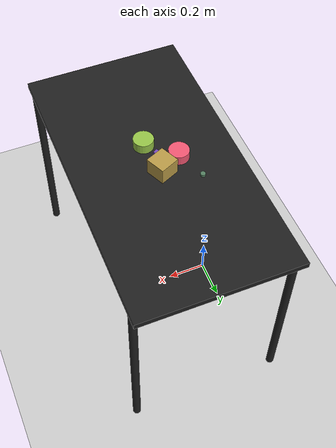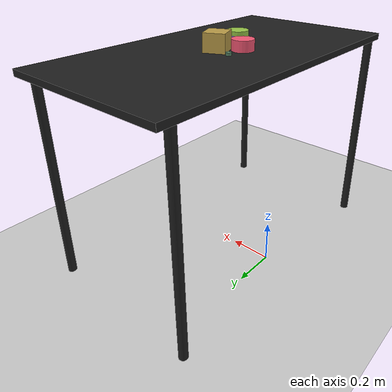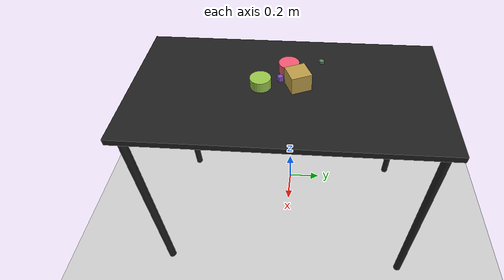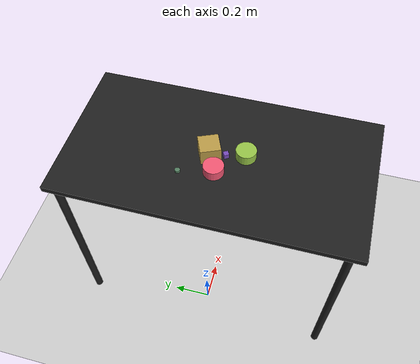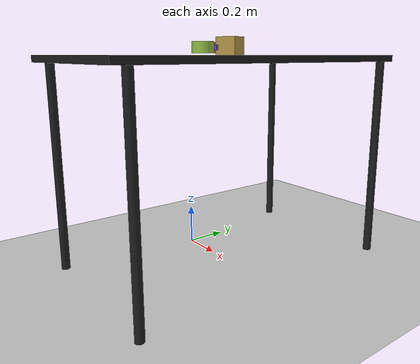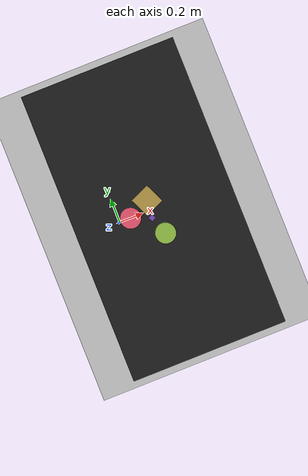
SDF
<?xml version="1.0" ?>
<sdf version="1.6">
  <world name="arm_world">
    <plugin filename="gz-sim-physics-system" name="gz::sim::systems::Physics">
      <engine>
        <filename>libgz-physics-bullet-featherstone-plugin.so</filename>
      </engine>
    </plugin>
    <plugin filename="gz-sim-user-commands-system" name="gz::sim::systems::UserCommands"/>
    <plugin filename="gz-sim-scene-broadcaster-system" name="gz::sim::systems::SceneBroadcaster"/>
    <plugin filename="gz-sim-sensors-system" name="gz::sim::systems::Sensors">
      <render_engine>ogre2</render_engine>
    </plugin>
    <gravity>0.0 0.0 -9.8</gravity>
    <scene>
      <shadows>false</shadows>
    </scene>
    <gui>
      <camera name="user_camera">
        <pose>0.75 -0.75 1.4 0 0.29 2.21</pose>
      </camera>
    </gui>
    <include>
      <uri>https://fuel.gazebosim.org/1.0/OpenRobotics/models/Sun</uri>
    </include>
    <model name="table">
      <static>true</static>
      <include>
        <uri>model://table</uri>
      </include>
      <pose>0.29 0 0 0 0 1.5708</pose>
    </model>
    <model name="ground_plane">
      <static>true</static>
      <link name="link">
        <collision name="collision">
          <geometry>
            <plane>
              <normal>0 0 1</normal>
            </plane>
          </geometry>
          <surface>
            <friction>
              <ode>
                <mu>1.0</mu>
                <mu2>1.0</mu2>
              </ode>
            </friction>
          </surface>
        </collision>
        <visual name="visual">
          <geometry>
            <plane>
              <normal>0 0 1</normal>
              <size>100 100</size>
            </plane>
          </geometry>
          <material>
            <ambient>0.8 0.8 0.8 1</ambient>
            <diffuse>0.8 0.8 0.8 1</diffuse>
            <specular>0.8 0.8 0.8 1</specular>
          </material>
        </visual>
      </link>
    </model>
    <model name="cylinder_l_0">
      <pose>0.175 0.0 1.05 0 0 2.44</pose>
      <link name="cylinder_l_0_link">
        <collision name="cylinder_l_0_collision">
          <geometry>
            <cylinder>
              <radius>0.05</radius>
              <length>0.05</length>
            </cylinder>
          </geometry>
        </collision>
        <visual name="cylinder_l_0_visual">
          <geometry>
            <cylinder>
              <radius>0.05</radius>
              <length>0.05</length>
            </cylinder>
          </geometry>
          <material>
            <ambient>0.95 0.34 0.45 1</ambient>
            <diffuse>0.95 0.34 0.45 1</diffuse>
          </material>
        </visual>
        <velocity_decay>
          <linear>1</linear>
          <angular>1</angular>
        </velocity_decay>
      </link>
    </model>
    <model name="cube_s_1">
      <pose>0.27 -0.036 1.05 0 0 5.26</pose>
      <link name="cube_s_1_link">
        <collision name="cube_s_1_collision">
          <geometry>
            <box>
              <size>0.025 0.025 0.025</size>
            </box>
          </geometry>
        </collision>
        <visual name="cube_s_1_visual">
          <geometry>
            <box>
              <size>0.025 0.025 0.025</size>
            </box>
          </geometry>
          <material>
            <ambient>0.47 0.29 0.73 1</ambient>
            <diffuse>0.47 0.29 0.73 1</diffuse>
          </material>
        </visual>
        <velocity_decay>
          <linear>1</linear>
          <angular>1</angular>
        </velocity_decay>
      </link>
    </model>
    <model name="cylinder_l_2">
      <pose>0.303 -0.126 1.05 0 0 3.51</pose>
      <link name="cylinder_l_2_link">
        <collision name="cylinder_l_2_collision">
          <geometry>
            <cylinder>
              <radius>0.05</radius>
              <length>0.05</length>
            </cylinder>
          </geometry>
        </collision>
        <visual name="cylinder_l_2_visual">
          <geometry>
            <cylinder>
              <radius>0.05</radius>
              <length>0.05</length>
            </cylinder>
          </geometry>
          <material>
            <ambient>0.59 0.77 0.28 1</ambient>
            <diffuse>0.59 0.77 0.28 1</diffuse>
          </material>
        </visual>
        <velocity_decay>
          <linear>1</linear>
          <angular>1</angular>
        </velocity_decay>
      </link>
    </model>
    <model name="cylinder_s_3">
      <pose>0.123 0.158 1.05 0 0 0.31</pose>
      <link name="cylinder_s_3_link">
        <collision name="cylinder_s_3_collision">
          <geometry>
            <cylinder>
              <radius>0.0125</radius>
              <length>0.0125</length>
            </cylinder>
          </geometry>
        </collision>
        <visual name="cylinder_s_3_visual">
          <geometry>
            <cylinder>
              <radius>0.0125</radius>
              <length>0.0125</length>
            </cylinder>
          </geometry>
          <material>
            <ambient>0.33 0.5 0.38 1</ambient>
            <diffuse>0.33 0.5 0.38 1</diffuse>
          </material>
        </visual>
        <velocity_decay>
          <linear>1</linear>
          <angular>1</angular>
        </velocity_decay>
      </link>
    </model>
    <model name="cube_l_4">
      <pose>0.278 0.048 1.05 0 0 5.13</pose>
      <link name="cube_l_4_link">
        <collision name="cube_l_4_collision">
          <geometry>
            <box>
              <size>0.1 0.1 0.1</size>
            </box>
          </geometry>
        </collision>
        <visual name="cube_l_4_visual">
          <geometry>
            <box>
              <size>0.1 0.1 0.1</size>
            </box>
          </geometry>
          <material>
            <ambient>0.73 0.61 0.28 1</ambient>
            <diffuse>0.73 0.61 0.28 1</diffuse>
          </material>
        </visual>
        <velocity_decay>
          <linear>1</linear>
          <angular>1</angular>
        </velocity_decay>
      </link>
    </model>
  </world>
</sdf>

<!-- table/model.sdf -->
<sdf version="1.5">
  <model name="table">
    <static>true</static>
    <link name="link">
      <collision name="surface">
        <pose>0 0 1.0 0 0 0</pose>
        <geometry>
          <box>
            <size>1.5 0.8 0.03</size>
          </box>
        </geometry>
        <surface>
          <friction>
            <ode>
              <mu>0.6</mu>
              <mu2>0.6</mu2>
            </ode>
          </friction>
        </surface>
      </collision>
      <visual name="surface">
        <pose>0 0 1.0 0 0 0</pose>
        <geometry>
          <box>
            <size>1.5 0.8 0.03</size>
          </box>
        </geometry>
        <material>
          <script>
            <uri>file://media/materials/scripts/gazebo.material</uri>
            <name>Gazebo/Black</name>
          </script>
        </material>
      </visual>
      <collision name="front_left_leg">
        <pose>0.68 0.38 0.5 0 0 0</pose>
        <geometry>
          <cylinder>
            <radius>0.02</radius>
            <length>1.0</length>
          </cylinder>
        </geometry>
      </collision>
      <visual name="front_left_leg">
        <pose>0.68 0.38 0.5 0 0 0</pose>
        <geometry>
          <cylinder>
            <radius>0.02</radius>
            <length>1.0</length>
          </cylinder>
        </geometry>
        <material>
          <script>
            <uri>file://media/materials/scripts/gazebo.material</uri>
            <name>Gazebo/Black</name>
          </script>
        </material>
      </visual>
      <collision name="front_right_leg">
        <pose>0.68 -0.38 0.5 0 0 0</pose>
        <geometry>
          <cylinder>
            <radius>0.02</radius>
            <length>1.0</length>
          </cylinder>
        </geometry>
      </collision>
      <visual name="front_right_leg">
        <pose>0.68 -0.38 0.5 0 0 0</pose>
        <geometry>
          <cylinder>
            <radius>0.02</radius>
            <length>1.0</length>
          </cylinder>
        </geometry>
        <material>
          <script>
            <uri>file://media/materials/scripts/gazebo.material</uri>
            <name>Gazebo/Black</name>
          </script>
        </material>
      </visual>
      <collision name="back_right_leg">
        <pose>-0.68 -0.38 0.5 0 0 0</pose>
        <geometry>
          <cylinder>
            <radius>0.02</radius>
            <length>1.0</length>
          </cylinder>
        </geometry>
      </collision>
      <visual name="back_right_leg">
        <pose>-0.68 -0.38 0.5 0 0 0</pose>
        <geometry>
          <cylinder>
            <radius>0.02</radius>
            <length>1.0</length>
          </cylinder>
        </geometry>
        <material>
          <script>
            <uri>file://media/materials/scripts/gazebo.material</uri>
            <name>Gazebo/Black</name>
          </script>
        </material>
      </visual>
      <collision name="back_left_leg">
        <pose>-0.68 0.38 0.5 0 0 0</pose>
        <geometry>
          <cylinder>
            <radius>0.02</radius>
            <length>1.0</length>
          </cylinder>
        </geometry>
      </collision>
      <visual name="back_left_leg">
        <pose>-0.68 0.38 0.5 0 0 0</pose>
        <geometry>
          <cylinder>
            <radius>0.02</radius>
            <length>1.0</length>
          </cylinder>
        </geometry>
        <material>
          <script>
            <uri>file://media/materials/scripts/gazebo.material</uri>
            <name>Gazebo/Black</name>
          </script>
        </material>
      </visual>
    </link>
  </model>
</sdf>
